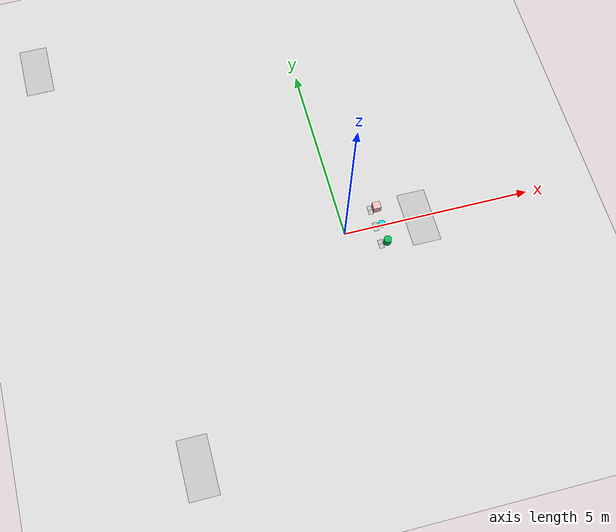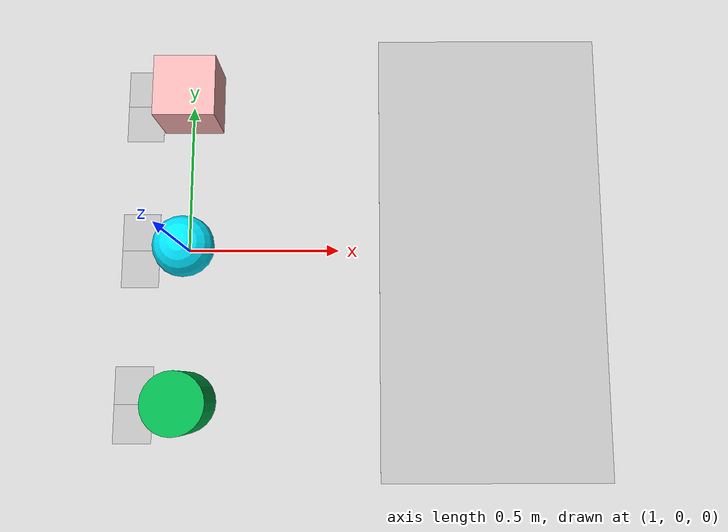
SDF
<sdf version="1.6">
 <world name="default">
  <model name="ground_plane">
   <static>1</static>
   <link name="link">
    <collision name="collision">
     <geometry><plane><normal>0 0 1</normal><size>100 100</size></plane></geometry>
     <surface><friction><ode><mu>100</mu><mu2>50</mu2></ode></friction></surface>
    </collision>
    <visual name="visual">
     <cast_shadows>0</cast_shadows>
     <geometry><plane><normal>0 0 1</normal><size>100 100</size></plane></geometry>
     <material>
      <script><uri>file://media/materials/scripts/gazebo.material</uri><name>Gazebo/Grey</name></script>
     </material>
    </visual>
   </link>
  </model>
  <light name="sun" type="directional">
   <pose>0 0 10 0 -0 0</pose>
   <diffuse>0.8 0.8 0.8 1</diffuse>
   <specular>0.1 0.1 0.1 1</specular>
   <attenuation>
    <range>1000</range>
    <constant>0.9</constant>
    <linear>0.01</linear>
    <quadratic>0.001</quadratic>
   </attenuation>
   <direction>-0.5 0.5 -1</direction>
  </light>
  <gravity>0 0 -9.8</gravity>
  <magnetic_field>6e-06 2.3e-05 -4.2e-05</magnetic_field>
  <atmosphere type="adiabatic"/>
  <physics name="default_physics" default="0" type="ode">
   <max_step_size>0.001</max_step_size>
   <real_time_factor>1</real_time_factor>
   <real_time_update_rate>1000</real_time_update_rate>
  </physics>
  <scene><ambient>0.4 0.4 0.4 1</ambient><background>0.7 0.7 0.7 1</background><shadows>1</shadows></scene>
  <spherical_coordinates>
   <surface_model>EARTH_WGS84</surface_model>
   <latitude_deg>0</latitude_deg>
   <longitude_deg>0</longitude_deg>
   <elevation>0</elevation>
   <heading_deg>0</heading_deg>
  </spherical_coordinates>
  <model name="P_0">
   <static>1</static>
   <link name="link">
    <pose>0 0 1e-05 0 -0 0</pose>
    <collision name="collision">
     <geometry><plane><normal>0 0 1</normal><size>1.5 0.75</size></plane></geometry>
     <surface><friction><ode><mu>100</mu><mu2>50</mu2></ode></friction></surface>
    </collision>
    <visual name="visual">
     <cast_shadows>0</cast_shadows>
     <geometry><plane><normal>0 0 1</normal><size>0.75 1.5</size></plane></geometry>
     <material><script><uri>model://P/materials/scripts/P.material</uri><name>P/ground</name></script></material>
    </visual>
   </link>
   <pose>2.01181 -0.007139 0 0 -0 0</pose>
  </model>
  <model name="N_1">
   <static>1</static>
   <link name="link">
    <pose>0 0 1e-05 0 -0 0</pose>
    <collision name="collision">
     <geometry><plane><normal>0 0 1</normal><size>1.5 0.75</size></plane></geometry>
     <surface><friction><ode><mu>100</mu><mu2>50</mu2></ode></friction></surface>
    </collision>
    <visual name="visual">
     <cast_shadows>0</cast_shadows>
     <geometry><plane><normal>0 0 1</normal><size>0.75 1.5</size></plane></geometry>
     <material><script><uri>model://N/materials/scripts/N.material</uri><name>N/ground</name></script></material>
    </visual>
   </link>
   <pose>-5.00961 -5.01248 0 0 -0 0</pose>
  </model>
  <model name="B_0">
   <static>1</static>
   <link name="link">
    <pose>0 0 1e-05 0 -0 0</pose>
    <collision name="collision">
     <geometry><plane><normal>0 0 1</normal><size>1.5 0.75</size></plane></geometry>
     <surface><friction><ode><mu>100</mu><mu2>50</mu2></ode></friction></surface>
    </collision>
    <visual name="visual">
     <cast_shadows>0</cast_shadows>
     <geometry><plane><normal>0 0 1</normal><size>0.75 1.5</size></plane></geometry>
     <material><script><uri>model://B/materials/scripts/B.material</uri><name>B/ground</name></script></material>
    </visual>
   </link>
   <pose>-7.00245 7.03347 0 0 -0 0</pose>
  </model>
  <model name="unit_sphere9">
   <link name="link">
    <inertial>
     <mass>1</mass>
     <inertia><ixx>0.1</ixx><ixy>0</ixy><ixz>0</ixz><iyy>0.1</iyy><iyz>0</iyz><izz>0.1</izz></inertia>
    </inertial>
    <visual name="ModelPreview_1::link::visual_1">
     <geometry><sphere><radius>0.1</radius></sphere></geometry>
     <material>
      <script><name>Gazebo/Grey</name><uri>file://media/materials/scripts/gazebo.material</uri></script>
      <ambient>0 0.9 1 1</ambient>
      <diffuse>0.7 0.7 0.7 1</diffuse>
      <specular>0 0 0 1</specular>
      <emissive>1 0 0.6 0.6</emissive>
      <shader type="vertex"><normal_map>__default__</normal_map></shader>
     </material>
    </visual>
    <collision name="collision">
     <geometry><sphere><radius>0.1</radius></sphere></geometry>
     <surface>
      <friction>
       <ode><mu>0.1</mu><mu2>0.1</mu2><fdir1>0 0 0</fdir1><slip1>0</slip1><slip2>0</slip2></ode>
       <torsional>
        <coefficient>1</coefficient>
        <patch_radius>0</patch_radius>
        <surface_radius>0</surface_radius>
        <use_patch_radius>1</use_patch_radius>
        <ode><slip>0</slip></ode>
       </torsional>
      </friction>
      <bounce><restitution_coefficient>0.2</restitution_coefficient><threshold>0</threshold></bounce>
      <contact>
       <collide_without_contact>0</collide_without_contact>
       <collide_without_contact_bitmask>1</collide_without_contact_bitmask>
       <collide_bitmask>1</collide_bitmask>
       <ode>
        <soft_cfm>0</soft_cfm>
        <soft_erp>0.2</soft_erp>
        <kp>1e+06</kp>
        <kd>1</kd>
        <max_vel>25</max_vel>
        <min_depth>0</min_depth>
       </ode>
       <bullet>
        <split_impulse>1</split_impulse>
        <split_impulse_penetration_threshold>-0.01</split_impulse_penetration_threshold>
        <soft_cfm>0</soft_cfm>
        <soft_erp>0.2</soft_erp>
        <kp>1e+06</kp>
        <kd>1</kd>
       </bullet>
      </contact>
     </surface>
    </collision>
   </link>
   <static>0</static>
   <pose>1 0 0.100009 0 -0 0</pose>
  </model>
  <model name="sq_0_6">
   <link name="link_6">
    <pose>-5.99529 1.91125 0.399991 0 -0 0</pose>
    <inertial>
     <mass>1</mass>
     <inertia>
      <ixx>0.166667</ixx>
      <ixy>0</ixy>
      <ixz>0</ixz>
      <iyy>0.166667</iyy>
      <iyz>0</iyz>
      <izz>0.166667</izz>
     </inertia>
    </inertial>
    <visual name="visual">
     <geometry><box><size>0.2 0.2 0.2</size></box></geometry>
     <material>
      <lighting>1</lighting>
      <script><uri>file://media/materials/scripts/gazebo.material</uri><name>Gazebo/Grey</name></script>
      <ambient>1 0 1 1</ambient>
      <diffuse>1 0.7 0.7 1</diffuse>
      <specular>0.91 0.01 0.31 0.6</specular>
      <emissive>1 1 0 0.9</emissive>
      <shader type="vertex"><normal_map>__default__</normal_map></shader>
     </material>
    </visual>
    <collision name="collision">
     <geometry><box><size>0.2 0.2 0.2</size></box></geometry>
     <surface>
      <friction>
       <ode><mu>0.1</mu><mu2>0.1</mu2><fdir1>0 0 0</fdir1><slip1>0</slip1><slip2>0</slip2></ode>
       <torsional>
        <coefficient>1</coefficient>
        <patch_radius>0</patch_radius>
        <surface_radius>0</surface_radius>
        <use_patch_radius>1</use_patch_radius>
        <ode><slip>0</slip></ode>
       </torsional>
      </friction>
      <bounce><restitution_coefficient>0.2</restitution_coefficient><threshold>0</threshold></bounce>
      <contact>
       <collide_without_contact>0</collide_without_contact>
       <collide_without_contact_bitmask>1</collide_without_contact_bitmask>
       <collide_bitmask>1</collide_bitmask>
       <ode>
        <soft_cfm>0</soft_cfm>
        <soft_erp>0.2</soft_erp>
        <kp>1e+13</kp>
        <kd>1</kd>
        <max_vel>0.01</max_vel>
        <min_depth>0</min_depth>
       </ode>
       <bullet>
        <split_impulse>1</split_impulse>
        <split_impulse_penetration_threshold>-0.01</split_impulse_penetration_threshold>
        <soft_cfm>0</soft_cfm>
        <soft_erp>0.2</soft_erp>
        <kp>1e+13</kp>
        <kd>1</kd>
       </bullet>
      </contact>
     </surface>
    </collision>
   </link>
   <static>0</static>
   <pose>7 -1.39999 -0.29999 5e-06 -1e-06 1e-06</pose>
  </model>
  <model name="cylinder1_01_0">
   <link name="link_4">
    <pose>0.001599 -1.99956 0.439996 -3e-06 3e-06 0.000662</pose>
    <inertial>
     <mass>1</mass>
     <inertia><ixx>0.145833</ixx><ixy>0</ixy><ixz>0</ixz><iyy>0.145833</iyy><iyz>0</iyz><izz>0.125</izz></inertia>
    </inertial>
    <visual name="visual">
     <geometry><cylinder><radius>0.1</radius><length>0.2</length></cylinder></geometry>
     <material>
      <lighting>1</lighting>
      <script><uri>file://media/materials/scripts/gazebo.material</uri><name>Gazebo/Grey</name></script>
      <ambient>0.7 0.3 0.7 0.4</ambient>
      <diffuse>0 0.7 0.3 1</diffuse>
      <specular>0.01 0.01 0.01 1</specular>
      <emissive>0.6 0.9 0.7 1</emissive>
      <shader type="vertex"><normal_map>__default__</normal_map></shader>
     </material>
    </visual>
    <collision name="collision">
     <geometry><cylinder><radius>0.1</radius><length>0.2</length></cylinder></geometry>
     <surface>
      <friction>
       <ode><mu>0.1</mu><mu2>0.1</mu2><fdir1>0 0 0</fdir1><slip1>0</slip1><slip2>0</slip2></ode>
       <torsional>
        <coefficient>1</coefficient>
        <patch_radius>0</patch_radius>
        <surface_radius>0</surface_radius>
        <use_patch_radius>1</use_patch_radius>
        <ode><slip>0</slip></ode>
       </torsional>
      </friction>
      <bounce><restitution_coefficient>0.2</restitution_coefficient><threshold>-0.03</threshold></bounce>
      <contact>
       <collide_without_contact>0</collide_without_contact>
       <collide_without_contact_bitmask>1</collide_without_contact_bitmask>
       <collide_bitmask>1</collide_bitmask>
       <ode>
        <soft_cfm>0</soft_cfm>
        <soft_erp>0.2</soft_erp>
        <kp>1e+09</kp>
        <kd>1</kd>
        <max_vel>0.01</max_vel>
        <min_depth>0</min_depth>
       </ode>
       <bullet>
        <split_impulse>1</split_impulse>
        <split_impulse_penetration_threshold>-0.01</split_impulse_penetration_threshold>
        <soft_cfm>0</soft_cfm>
        <soft_erp>0.2</soft_erp>
        <kp>1e+09</kp>
        <kd>1</kd>
       </bullet>
      </contact>
     </surface>
    </collision>
   </link>
   <static>0</static>
   <plugin name="differential_drive_controller" filename="libgazebo_ros_diff_drive.so">
    <legacyMode>false</legacyMode>
    <alwaysOn>true</alwaysOn>
    <updateRate>20</updateRate>
    <leftJoint>left_wheel_hinge</leftJoint>
    <rightJoint>right_wheel_hinge</rightJoint>
    <wheelDiameter>0.1</wheelDiameter>
    <torque>20</torque>
    <commandTopic>cmd_vel</commandTopic>
    <odometryTopic>odom</odometryTopic>
    <odometryFrame>odom</odometryFrame>
    <robotBaseFrame>chassis</robotBaseFrame>
    <robotNamespace>/mybot/</robotNamespace>
   </plugin>
   <plugin name="gazebo_ros_control" filename="libgazebo_ros_control.so">
    <robotNamespace>/mybot</robotNamespace>
    <robotSimType>gazebo_ros_control/DefaultRobotHWSim</robotSimType>
    <legacyModeNS>true</legacyModeNS>
   </plugin>
   <pose>0.998132 1.49981 -0.339979 4e-06 -5e-06 0.00084</pose>
  </model>
  <model name="three_0">
   <static>1</static>
   <link name="link">
    <pose>0 0 1e-05 0 0 -1.57</pose>
    <collision name="collision">
     <geometry><plane><normal>0 0 1</normal><size>1 1</size></plane></geometry>
     <surface><friction><ode><mu>0.8</mu><mu2>0.5</mu2></ode></friction></surface>
    </collision>
    <visual name="visual">
     <geometry><plane><normal>0 0 1</normal><size>0.125 0.125</size></plane></geometry>
     <material>
      <script><uri>model://three/materials/scripts/three.material</uri><name>BYU3/ground</name></script>
     </material>
    </visual>
   </link>
   <pose>0.835951 0.567855 0 0 -0 0</pose>
  </model>
  <model name="by">
   <static>1</static>
   <link name="link">
    <pose>0 0 1e-05 0 0 -1.57</pose>
    <collision name="collision">
     <geometry><plane><normal>0 0 1</normal><size>1 1</size></plane></geometry>
     <surface><friction><ode><mu>0.8</mu><mu2>0.5</mu2></ode></friction></surface>
    </collision>
    <visual name="visual">
     <cast_shadows>0</cast_shadows>
     <geometry><plane><normal>0 0 1</normal><size>0.125 0.125</size></plane></geometry>
     <material>
      <script><uri>model://by/materials/scripts/by.material</uri><name>BY/ground</name></script>
     </material>
    </visual>
   </link>
   <pose>0.835981 0.443074 0 0 -0 0</pose>
  </model>
  <model name="by_1">
   <static>1</static>
   <link name="link">
    <pose>0 0 1e-05 0 0 -1.57</pose>
    <collision name="collision">
     <geometry><plane><normal>0 0 1</normal><size>1 1</size></plane></geometry>
     <surface><friction><ode><mu>0.8</mu><mu2>0.5</mu2></ode></friction></surface>
    </collision>
    <visual name="visual">
     <cast_shadows>0</cast_shadows>
     <geometry><plane><normal>0 0 1</normal><size>0.125 0.125</size></plane></geometry>
     <material>
      <script><uri>model://by/materials/scripts/by.material</uri><name>BY/ground</name></script>
     </material>
    </visual>
   </link>
   <pose>0.836385 0.064062 0 0 -0 0</pose>
  </model>
  <model name="byu_0">
   <static>1</static>
   <link name="link">
    <pose>0 0 1e-05 0 0 -1.57</pose>
    <collision name="collision">
     <geometry><plane><normal>0 0 1</normal><size>1 1</size></plane></geometry>
     <surface><friction><ode><mu>0.8</mu><mu2>0.5</mu2></ode></friction></surface>
    </collision>
    <visual name="visual">
     <geometry><plane><normal>0 0 1</normal><size>0.125 0.125</size></plane></geometry>
     <material>
      <script><uri>model://byu/materials/scripts/byu.material</uri><name>BYU/ground</name></script>
     </material>
    </visual>
   </link>
   <pose>0.836566 -0.060764 0 0 -0 0</pose>
  </model>
  <model name="two_1">
   <static>1</static>
   <link name="link">
    <pose>0 0 1e-05 0 0 -1.57</pose>
    <collision name="collision">
     <geometry><plane><normal>0 0 1</normal><size>1 1</size></plane></geometry>
     <surface><friction><ode><mu>0.8</mu><mu2>0.5</mu2></ode></friction></surface>
    </collision>
    <visual name="visual">
     <geometry><plane><normal>0 0 1</normal><size>0.125 0.125</size></plane></geometry>
     <material>
      <script><uri>model://two/materials/scripts/two.material</uri><name>BYU2/ground</name></script>
     </material>
    </visual>
   </link>
   <pose>0.831681 -0.446236 0 0 -0 0</pose>
  </model>
  <model name="byu_1">
   <static>1</static>
   <link name="link">
    <pose>0 0 1e-05 0 0 -1.57</pose>
    <collision name="collision">
     <geometry><plane><normal>0 0 1</normal><size>1 1</size></plane></geometry>
     <surface><friction><ode><mu>0.8</mu><mu2>0.5</mu2></ode></friction></surface>
    </collision>
    <visual name="visual">
     <geometry><plane><normal>0 0 1</normal><size>0.125 0.125</size></plane></geometry>
     <material>
      <script><uri>model://byu/materials/scripts/byu.material</uri><name>BYU/ground</name></script>
     </material>
    </visual>
   </link>
   <pose>0.831579 -0.567855 0 0 -0 0</pose>
  </model>
 </world>
</sdf>
